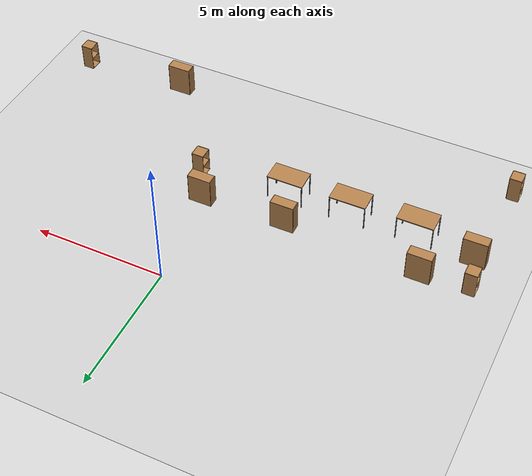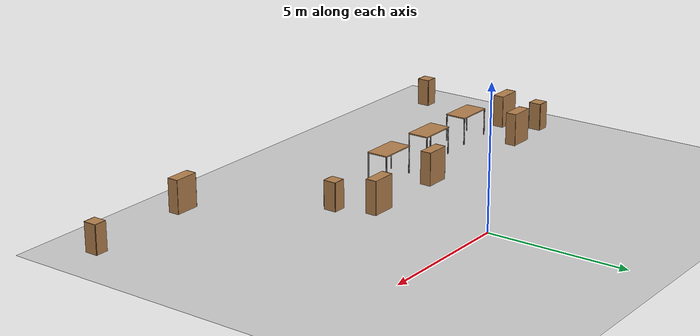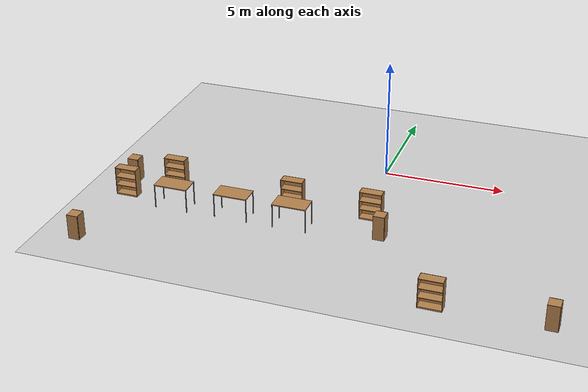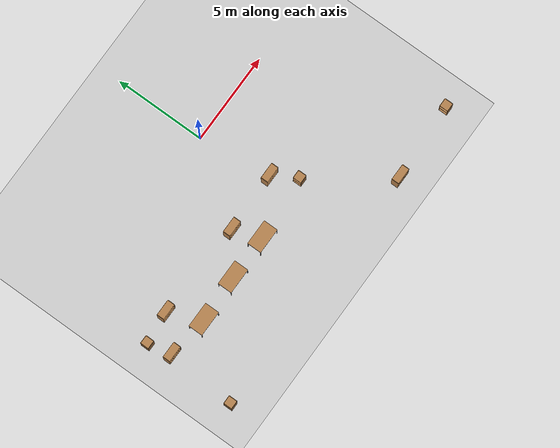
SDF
<sdf version="1.6">
 <world name="default">
  <model name="ground_plane">
   <static>1</static>
   <link name="link">
    <collision name="collision">
     <geometry><plane><normal>0 0 1</normal><size>100 100</size></plane></geometry>
     <surface><friction><ode><mu>100</mu><mu2>50</mu2></ode></friction></surface>
    </collision>
    <visual name="visual">
     <cast_shadows>0</cast_shadows>
     <geometry><plane><normal>0 0 1</normal><size>100 100</size></plane></geometry>
     <material>
      <script><uri>file://media/materials/scripts/gazebo.material</uri><name>Gazebo/Grey</name></script>
     </material>
    </visual>
   </link>
  </model>
  <model name="cabinet_clone">
   <static>1</static>
   <link name="cabinet_bottom_plate">
    <inertial>
     <pose>0 0 -1 0 -0 0</pose>
     <inertia><ixx>2.05</ixx><ixy>0</ixy><ixz>0</ixz><iyy>2.05</iyy><iyz>0</iyz><izz>2.05</izz></inertia>
     <mass>25</mass>
    </inertial>
    <collision name="cabinet_bottom_plate_geom">
     <pose>0 0 0.01 0 -0 0</pose>
     <geometry><box><size>0.45 0.45 0.02</size></box></geometry>
    </collision>
    <visual name="cabinet_bottom_plate_geom_visual">
     <pose>0 0 0.01 0 -0 0</pose>
     <geometry><box><size>0.45 0.45 0.02</size></box></geometry>
     <material>
      <script><uri>file://media/materials/scripts/gazebo.material</uri><name>Gazebo/Wood</name></script>
     </material>
    </visual>
    <collision name="cabinet_bottom_plate_geom_cabinet_back_plate">
     <pose>0.235 0 0.51 0 -0 0</pose>
     <geometry><box><size>0.02 0.45 1.02</size></box></geometry>
    </collision>
    <visual name="cabinet_bottom_plate_geom_cabinet_back_plate_visual">
     <pose>0.235 0 0.51 0 -0 0</pose>
     <geometry><box><size>0.02 0.45 1.02</size></box></geometry>
     <material>
      <script><uri>file://media/materials/scripts/gazebo.material</uri><name>Gazebo/Wood</name></script>
     </material>
    </visual>
    <collision name="cabinet_bottom_plate_geom_cabinet_left_plate">
     <pose>0 0.235 0.51 0 -0 0</pose>
     <geometry><box><size>0.45 0.02 1.02</size></box></geometry>
    </collision>
    <visual name="cabinet_bottom_plate_geom_cabinet_left_plate_visual">
     <pose>0 0.235 0.51 0 -0 0</pose>
     <geometry><box><size>0.45 0.02 1.02</size></box></geometry>
     <material>
      <script><uri>file://media/materials/scripts/gazebo.material</uri><name>Gazebo/Wood</name></script>
     </material>
    </visual>
    <collision name="cabinet_bottom_plate_geom_cabinet_middle_plate">
     <pose>0 0 0.51 0 -0 0</pose>
     <geometry><box><size>0.45 0.45 0.02</size></box></geometry>
    </collision>
    <visual name="cabinet_bottom_plate_geom_cabinet_middle_plate_visual">
     <pose>0 0 0.51 0 -0 0</pose>
     <geometry><box><size>0.45 0.45 0.02</size></box></geometry>
     <material>
      <script><uri>file://media/materials/scripts/gazebo.material</uri><name>Gazebo/Wood</name></script>
     </material>
    </visual>
    <collision name="cabinet_bottom_plate_geom_cabinet_right_plate">
     <pose>0 -0.235 0.51 0 -0 0</pose>
     <geometry><box><size>0.45 0.02 1.02</size></box></geometry>
    </collision>
    <visual name="cabinet_bottom_plate_geom_cabinet_right_plate_visual">
     <pose>0 -0.235 0.51 0 -0 0</pose>
     <geometry><box><size>0.45 0.02 1.02</size></box></geometry>
     <material>
      <script><uri>file://media/materials/scripts/gazebo.material</uri><name>Gazebo/Wood</name></script>
     </material>
    </visual>
    <collision name="cabinet_bottom_plate_geom_cabinet_top_plate">
     <pose>0 0 1.01 0 -0 0</pose>
     <geometry><box><size>0.45 0.45 0.02</size></box></geometry>
    </collision>
    <visual name="cabinet_bottom_plate_geom_cabinet_top_plate_visual">
     <pose>0 0 1.01 0 -0 0</pose>
     <geometry><box><size>0.45 0.45 0.02</size></box></geometry>
     <material>
      <script><uri>file://media/materials/scripts/gazebo.material</uri><name>Gazebo/Wood</name></script>
     </material>
    </visual>
   </link>
   <pose>-9.82401 -3.98425 0 0 -0 0</pose>
  </model>
  <model name="cabinet_clone_3">
   <static>1</static>
   <link name="cabinet_bottom_plate">
    <inertial>
     <pose>0 0 -1 0 -0 0</pose>
     <inertia><ixx>2.05</ixx><ixy>0</ixy><ixz>0</ixz><iyy>2.05</iyy><iyz>0</iyz><izz>2.05</izz></inertia>
     <mass>25</mass>
    </inertial>
    <collision name="cabinet_bottom_plate_geom">
     <pose>0 0 0.01 0 -0 0</pose>
     <geometry><box><size>0.45 0.45 0.02</size></box></geometry>
    </collision>
    <visual name="cabinet_bottom_plate_geom_visual">
     <pose>0 0 0.01 0 -0 0</pose>
     <geometry><box><size>0.45 0.45 0.02</size></box></geometry>
     <material>
      <script><uri>file://media/materials/scripts/gazebo.material</uri><name>Gazebo/Wood</name></script>
     </material>
    </visual>
    <collision name="cabinet_bottom_plate_geom_cabinet_back_plate">
     <pose>0.235 0 0.51 0 -0 0</pose>
     <geometry><box><size>0.02 0.45 1.02</size></box></geometry>
    </collision>
    <visual name="cabinet_bottom_plate_geom_cabinet_back_plate_visual">
     <pose>0.235 0 0.51 0 -0 0</pose>
     <geometry><box><size>0.02 0.45 1.02</size></box></geometry>
     <material>
      <script><uri>file://media/materials/scripts/gazebo.material</uri><name>Gazebo/Wood</name></script>
     </material>
    </visual>
    <collision name="cabinet_bottom_plate_geom_cabinet_left_plate">
     <pose>0 0.235 0.51 0 -0 0</pose>
     <geometry><box><size>0.45 0.02 1.02</size></box></geometry>
    </collision>
    <visual name="cabinet_bottom_plate_geom_cabinet_left_plate_visual">
     <pose>0 0.235 0.51 0 -0 0</pose>
     <geometry><box><size>0.45 0.02 1.02</size></box></geometry>
     <material>
      <script><uri>file://media/materials/scripts/gazebo.material</uri><name>Gazebo/Wood</name></script>
     </material>
    </visual>
    <collision name="cabinet_bottom_plate_geom_cabinet_middle_plate">
     <pose>0 0 0.51 0 -0 0</pose>
     <geometry><box><size>0.45 0.45 0.02</size></box></geometry>
    </collision>
    <visual name="cabinet_bottom_plate_geom_cabinet_middle_plate_visual">
     <pose>0 0 0.51 0 -0 0</pose>
     <geometry><box><size>0.45 0.45 0.02</size></box></geometry>
     <material>
      <script><uri>file://media/materials/scripts/gazebo.material</uri><name>Gazebo/Wood</name></script>
     </material>
    </visual>
    <collision name="cabinet_bottom_plate_geom_cabinet_right_plate">
     <pose>0 -0.235 0.51 0 -0 0</pose>
     <geometry><box><size>0.45 0.02 1.02</size></box></geometry>
    </collision>
    <visual name="cabinet_bottom_plate_geom_cabinet_right_plate_visual">
     <pose>0 -0.235 0.51 0 -0 0</pose>
     <geometry><box><size>0.45 0.02 1.02</size></box></geometry>
     <material>
      <script><uri>file://media/materials/scripts/gazebo.material</uri><name>Gazebo/Wood</name></script>
     </material>
    </visual>
    <collision name="cabinet_bottom_plate_geom_cabinet_top_plate">
     <pose>0 0 1.01 0 -0 0</pose>
     <geometry><box><size>0.45 0.45 0.02</size></box></geometry>
    </collision>
    <visual name="cabinet_bottom_plate_geom_cabinet_top_plate_visual">
     <pose>0 0 1.01 0 -0 0</pose>
     <geometry><box><size>0.45 0.45 0.02</size></box></geometry>
     <material>
      <script><uri>file://media/materials/scripts/gazebo.material</uri><name>Gazebo/Wood</name></script>
     </material>
    </visual>
   </link>
   <pose>1.20977 -5.22119 0 0 -0 0</pose>
  </model>
  <model name="cabinet_clone_4">
   <static>1</static>
   <link name="cabinet_bottom_plate">
    <inertial>
     <pose>0 0 -1 0 -0 0</pose>
     <inertia><ixx>2.05</ixx><ixy>0</ixy><ixz>0</ixz><iyy>2.05</iyy><iyz>0</iyz><izz>2.05</izz></inertia>
     <mass>25</mass>
    </inertial>
    <collision name="cabinet_bottom_plate_geom">
     <pose>0 0 0.01 0 -0 0</pose>
     <geometry><box><size>0.45 0.45 0.02</size></box></geometry>
    </collision>
    <visual name="cabinet_bottom_plate_geom_visual">
     <pose>0 0 0.01 0 -0 0</pose>
     <geometry><box><size>0.45 0.45 0.02</size></box></geometry>
     <material>
      <script><uri>file://media/materials/scripts/gazebo.material</uri><name>Gazebo/Wood</name></script>
     </material>
    </visual>
    <collision name="cabinet_bottom_plate_geom_cabinet_back_plate">
     <pose>0.235 0 0.51 0 -0 0</pose>
     <geometry><box><size>0.02 0.45 1.02</size></box></geometry>
    </collision>
    <visual name="cabinet_bottom_plate_geom_cabinet_back_plate_visual">
     <pose>0.235 0 0.51 0 -0 0</pose>
     <geometry><box><size>0.02 0.45 1.02</size></box></geometry>
     <material>
      <script><uri>file://media/materials/scripts/gazebo.material</uri><name>Gazebo/Wood</name></script>
     </material>
    </visual>
    <collision name="cabinet_bottom_plate_geom_cabinet_left_plate">
     <pose>0 0.235 0.51 0 -0 0</pose>
     <geometry><box><size>0.45 0.02 1.02</size></box></geometry>
    </collision>
    <visual name="cabinet_bottom_plate_geom_cabinet_left_plate_visual">
     <pose>0 0.235 0.51 0 -0 0</pose>
     <geometry><box><size>0.45 0.02 1.02</size></box></geometry>
     <material>
      <script><uri>file://media/materials/scripts/gazebo.material</uri><name>Gazebo/Wood</name></script>
     </material>
    </visual>
    <collision name="cabinet_bottom_plate_geom_cabinet_middle_plate">
     <pose>0 0 0.51 0 -0 0</pose>
     <geometry><box><size>0.45 0.45 0.02</size></box></geometry>
    </collision>
    <visual name="cabinet_bottom_plate_geom_cabinet_middle_plate_visual">
     <pose>0 0 0.51 0 -0 0</pose>
     <geometry><box><size>0.45 0.45 0.02</size></box></geometry>
     <material>
      <script><uri>file://media/materials/scripts/gazebo.material</uri><name>Gazebo/Wood</name></script>
     </material>
    </visual>
    <collision name="cabinet_bottom_plate_geom_cabinet_right_plate">
     <pose>0 -0.235 0.51 0 -0 0</pose>
     <geometry><box><size>0.45 0.02 1.02</size></box></geometry>
    </collision>
    <visual name="cabinet_bottom_plate_geom_cabinet_right_plate_visual">
     <pose>0 -0.235 0.51 0 -0 0</pose>
     <geometry><box><size>0.45 0.02 1.02</size></box></geometry>
     <material>
      <script><uri>file://media/materials/scripts/gazebo.material</uri><name>Gazebo/Wood</name></script>
     </material>
    </visual>
    <collision name="cabinet_bottom_plate_geom_cabinet_top_plate">
     <pose>0 0 1.01 0 -0 0</pose>
     <geometry><box><size>0.45 0.45 0.02</size></box></geometry>
    </collision>
    <visual name="cabinet_bottom_plate_geom_cabinet_top_plate_visual">
     <pose>0 0 1.01 0 -0 0</pose>
     <geometry><box><size>0.45 0.45 0.02</size></box></geometry>
     <material>
      <script><uri>file://media/materials/scripts/gazebo.material</uri><name>Gazebo/Wood</name></script>
     </material>
    </visual>
   </link>
   <pose>-9.82678 -9.02019 0 0 -0 0</pose>
  </model>
  <model name="cabinet_clone_5">
   <static>1</static>
   <link name="cabinet_bottom_plate">
    <inertial>
     <pose>0 0 -1 0 -0 0</pose>
     <inertia><ixx>2.05</ixx><ixy>0</ixy><ixz>0</ixz><iyy>2.05</iyy><iyz>0</iyz><izz>2.05</izz></inertia>
     <mass>25</mass>
    </inertial>
    <collision name="cabinet_bottom_plate_geom">
     <pose>0 0 0.01 0 -0 0</pose>
     <geometry><box><size>0.45 0.45 0.02</size></box></geometry>
    </collision>
    <visual name="cabinet_bottom_plate_geom_visual">
     <pose>0 0 0.01 0 -0 0</pose>
     <geometry><box><size>0.45 0.45 0.02</size></box></geometry>
     <material>
      <script><uri>file://media/materials/scripts/gazebo.material</uri><name>Gazebo/Wood</name></script>
     </material>
    </visual>
    <collision name="cabinet_bottom_plate_geom_cabinet_back_plate">
     <pose>0.235 0 0.51 0 -0 0</pose>
     <geometry><box><size>0.02 0.45 1.02</size></box></geometry>
    </collision>
    <visual name="cabinet_bottom_plate_geom_cabinet_back_plate_visual">
     <pose>0.235 0 0.51 0 -0 0</pose>
     <geometry><box><size>0.02 0.45 1.02</size></box></geometry>
     <material>
      <script><uri>file://media/materials/scripts/gazebo.material</uri><name>Gazebo/Wood</name></script>
     </material>
    </visual>
    <collision name="cabinet_bottom_plate_geom_cabinet_left_plate">
     <pose>0 0.235 0.51 0 -0 0</pose>
     <geometry><box><size>0.45 0.02 1.02</size></box></geometry>
    </collision>
    <visual name="cabinet_bottom_plate_geom_cabinet_left_plate_visual">
     <pose>0 0.235 0.51 0 -0 0</pose>
     <geometry><box><size>0.45 0.02 1.02</size></box></geometry>
     <material>
      <script><uri>file://media/materials/scripts/gazebo.material</uri><name>Gazebo/Wood</name></script>
     </material>
    </visual>
    <collision name="cabinet_bottom_plate_geom_cabinet_middle_plate">
     <pose>0 0 0.51 0 -0 0</pose>
     <geometry><box><size>0.45 0.45 0.02</size></box></geometry>
    </collision>
    <visual name="cabinet_bottom_plate_geom_cabinet_middle_plate_visual">
     <pose>0 0 0.51 0 -0 0</pose>
     <geometry><box><size>0.45 0.45 0.02</size></box></geometry>
     <material>
      <script><uri>file://media/materials/scripts/gazebo.material</uri><name>Gazebo/Wood</name></script>
     </material>
    </visual>
    <collision name="cabinet_bottom_plate_geom_cabinet_right_plate">
     <pose>0 -0.235 0.51 0 -0 0</pose>
     <geometry><box><size>0.45 0.02 1.02</size></box></geometry>
    </collision>
    <visual name="cabinet_bottom_plate_geom_cabinet_right_plate_visual">
     <pose>0 -0.235 0.51 0 -0 0</pose>
     <geometry><box><size>0.45 0.02 1.02</size></box></geometry>
     <material>
      <script><uri>file://media/materials/scripts/gazebo.material</uri><name>Gazebo/Wood</name></script>
     </material>
    </visual>
    <collision name="cabinet_bottom_plate_geom_cabinet_top_plate">
     <pose>0 0 1.01 0 -0 0</pose>
     <geometry><box><size>0.45 0.45 0.02</size></box></geometry>
    </collision>
    <visual name="cabinet_bottom_plate_geom_cabinet_top_plate_visual">
     <pose>0 0 1.01 0 -0 0</pose>
     <geometry><box><size>0.45 0.45 0.02</size></box></geometry>
     <material>
      <script><uri>file://media/materials/scripts/gazebo.material</uri><name>Gazebo/Wood</name></script>
     </material>
    </visual>
   </link>
   <pose>8.39269 -8.99171 0 0 -0 0</pose>
  </model>
  <model name="table_clone_0">
   <static>0</static>
   <link name="link">
    <collision name="surface">
     <pose>0 0 1 0 -0 0</pose>
     <geometry><box><size>1.5 0.8 0.03</size></box></geometry>
     <surface><friction><ode><mu>0.6</mu><mu2>0.6</mu2></ode></friction></surface>
    </collision>
    <visual name="visual1">
     <pose>0 0 1 0 -0 0</pose>
     <geometry><box><size>1.4 0.8 0.04</size></box></geometry>
     <material>
      <script><uri>file://media/materials/scripts/gazebo.material</uri><name>Gazebo/Wood</name></script>
     </material>
    </visual>
    <collision name="front_left_leg">
     <pose>0.68 0.38 0.5 0 -0 0</pose>
     <geometry><cylinder><radius>0.02</radius><length>1</length></cylinder></geometry>
    </collision>
    <visual name="front_left_leg">
     <pose>0.68 0.38 0.5 0 -0 0</pose>
     <geometry><cylinder><radius>0.02</radius><length>1</length></cylinder></geometry>
     <material>
      <script><uri>file://media/materials/scripts/gazebo.material</uri><name>Gazebo/Grey</name></script>
     </material>
    </visual>
    <collision name="front_right_leg">
     <pose>0.68 -0.38 0.5 0 -0 0</pose>
     <geometry><cylinder><radius>0.02</radius><length>1</length></cylinder></geometry>
    </collision>
    <visual name="front_right_leg">
     <pose>0.68 -0.38 0.5 0 -0 0</pose>
     <geometry><cylinder><radius>0.02</radius><length>1</length></cylinder></geometry>
     <material>
      <script><uri>file://media/materials/scripts/gazebo.material</uri><name>Gazebo/Grey</name></script>
     </material>
    </visual>
    <collision name="back_right_leg">
     <pose>-0.68 -0.38 0.5 0 -0 0</pose>
     <geometry><cylinder><radius>0.02</radius><length>1</length></cylinder></geometry>
    </collision>
    <visual name="back_right_leg">
     <pose>-0.68 -0.38 0.5 0 -0 0</pose>
     <geometry><cylinder><radius>0.02</radius><length>1</length></cylinder></geometry>
     <material>
      <script><uri>file://media/materials/scripts/gazebo.material</uri><name>Gazebo/Grey</name></script>
     </material>
    </visual>
    <collision name="back_left_leg">
     <pose>-0.68 0.38 0.5 0 -0 0</pose>
     <geometry><cylinder><radius>0.02</radius><length>1</length></cylinder></geometry>
    </collision>
    <visual name="back_left_leg">
     <pose>-0.68 0.38 0.5 0 -0 0</pose>
     <geometry><cylinder><radius>0.02</radius><length>1</length></cylinder></geometry>
     <material>
      <script><uri>file://media/materials/scripts/gazebo.material</uri><name>Gazebo/Grey</name></script>
     </material>
    </visual>
    <inertial>
     <inertia><ixx>1</ixx><ixy>0</ixy><ixz>0</ixz><iyy>1</iyy><iyz>0</iyz><izz>1</izz></inertia>
     <mass>1</mass>
    </inertial>
   </link>
   <pose>-7.28707 -5.56274 -1e-06 -2e-06 0 0</pose>
  </model>
  <model name="table_clone_1">
   <static>0</static>
   <link name="link">
    <collision name="surface">
     <pose>0 0 1 0 -0 0</pose>
     <geometry><box><size>1.5 0.8 0.03</size></box></geometry>
     <surface><friction><ode><mu>0.6</mu><mu2>0.6</mu2></ode></friction></surface>
    </collision>
    <visual name="visual1">
     <pose>0 0 1 0 -0 0</pose>
     <geometry><box><size>1.4 0.8 0.04</size></box></geometry>
     <material>
      <script><uri>file://media/materials/scripts/gazebo.material</uri><name>Gazebo/Wood</name></script>
     </material>
    </visual>
    <collision name="front_left_leg">
     <pose>0.68 0.38 0.5 0 -0 0</pose>
     <geometry><cylinder><radius>0.02</radius><length>1</length></cylinder></geometry>
    </collision>
    <visual name="front_left_leg">
     <pose>0.68 0.38 0.5 0 -0 0</pose>
     <geometry><cylinder><radius>0.02</radius><length>1</length></cylinder></geometry>
     <material>
      <script><uri>file://media/materials/scripts/gazebo.material</uri><name>Gazebo/Grey</name></script>
     </material>
    </visual>
    <collision name="front_right_leg">
     <pose>0.68 -0.38 0.5 0 -0 0</pose>
     <geometry><cylinder><radius>0.02</radius><length>1</length></cylinder></geometry>
    </collision>
    <visual name="front_right_leg">
     <pose>0.68 -0.38 0.5 0 -0 0</pose>
     <geometry><cylinder><radius>0.02</radius><length>1</length></cylinder></geometry>
     <material>
      <script><uri>file://media/materials/scripts/gazebo.material</uri><name>Gazebo/Grey</name></script>
     </material>
    </visual>
    <collision name="back_right_leg">
     <pose>-0.68 -0.38 0.5 0 -0 0</pose>
     <geometry><cylinder><radius>0.02</radius><length>1</length></cylinder></geometry>
    </collision>
    <visual name="back_right_leg">
     <pose>-0.68 -0.38 0.5 0 -0 0</pose>
     <geometry><cylinder><radius>0.02</radius><length>1</length></cylinder></geometry>
     <material>
      <script><uri>file://media/materials/scripts/gazebo.material</uri><name>Gazebo/Grey</name></script>
     </material>
    </visual>
    <collision name="back_left_leg">
     <pose>-0.68 0.38 0.5 0 -0 0</pose>
     <geometry><cylinder><radius>0.02</radius><length>1</length></cylinder></geometry>
    </collision>
    <visual name="back_left_leg">
     <pose>-0.68 0.38 0.5 0 -0 0</pose>
     <geometry><cylinder><radius>0.02</radius><length>1</length></cylinder></geometry>
     <material>
      <script><uri>file://media/materials/scripts/gazebo.material</uri><name>Gazebo/Grey</name></script>
     </material>
    </visual>
    <inertial>
     <inertia><ixx>1</ixx><ixy>0</ixy><ixz>0</ixz><iyy>1</iyy><iyz>0</iyz><izz>1</izz></inertia>
     <mass>1</mass>
    </inertial>
   </link>
   <pose>-4.7496 -5.48792 -1e-06 0 1e-06 0</pose>
  </model>
  <model name="table_clone_2">
   <static>0</static>
   <link name="link">
    <collision name="surface">
     <pose>0 0 1 0 -0 0</pose>
     <geometry><box><size>1.5 0.8 0.03</size></box></geometry>
     <surface><friction><ode><mu>0.6</mu><mu2>0.6</mu2></ode></friction></surface>
    </collision>
    <visual name="visual1">
     <pose>0 0 1 0 -0 0</pose>
     <geometry><box><size>1.4 0.8 0.04</size></box></geometry>
     <material>
      <script><uri>file://media/materials/scripts/gazebo.material</uri><name>Gazebo/Wood</name></script>
     </material>
    </visual>
    <collision name="front_left_leg">
     <pose>0.68 0.38 0.5 0 -0 0</pose>
     <geometry><cylinder><radius>0.02</radius><length>1</length></cylinder></geometry>
    </collision>
    <visual name="front_left_leg">
     <pose>0.68 0.38 0.5 0 -0 0</pose>
     <geometry><cylinder><radius>0.02</radius><length>1</length></cylinder></geometry>
     <material>
      <script><uri>file://media/materials/scripts/gazebo.material</uri><name>Gazebo/Grey</name></script>
     </material>
    </visual>
    <collision name="front_right_leg">
     <pose>0.68 -0.38 0.5 0 -0 0</pose>
     <geometry><cylinder><radius>0.02</radius><length>1</length></cylinder></geometry>
    </collision>
    <visual name="front_right_leg">
     <pose>0.68 -0.38 0.5 0 -0 0</pose>
     <geometry><cylinder><radius>0.02</radius><length>1</length></cylinder></geometry>
     <material>
      <script><uri>file://media/materials/scripts/gazebo.material</uri><name>Gazebo/Grey</name></script>
     </material>
    </visual>
    <collision name="back_right_leg">
     <pose>-0.68 -0.38 0.5 0 -0 0</pose>
     <geometry><cylinder><radius>0.02</radius><length>1</length></cylinder></geometry>
    </collision>
    <visual name="back_right_leg">
     <pose>-0.68 -0.38 0.5 0 -0 0</pose>
     <geometry><cylinder><radius>0.02</radius><length>1</length></cylinder></geometry>
     <material>
      <script><uri>file://media/materials/scripts/gazebo.material</uri><name>Gazebo/Grey</name></script>
     </material>
    </visual>
    <collision name="back_left_leg">
     <pose>-0.68 0.38 0.5 0 -0 0</pose>
     <geometry><cylinder><radius>0.02</radius><length>1</length></cylinder></geometry>
    </collision>
    <visual name="back_left_leg">
     <pose>-0.68 0.38 0.5 0 -0 0</pose>
     <geometry><cylinder><radius>0.02</radius><length>1</length></cylinder></geometry>
     <material>
      <script><uri>file://media/materials/scripts/gazebo.material</uri><name>Gazebo/Grey</name></script>
     </material>
    </visual>
    <inertial>
     <inertia><ixx>1</ixx><ixy>0</ixy><ixz>0</ixz><iyy>1</iyy><iyz>0</iyz><izz>1</izz></inertia>
     <mass>1</mass>
    </inertial>
   </link>
   <pose>-2.28914 -5.48905 -8e-06 1e-06 -0 0</pose>
  </model>
  <model name="bookshelf">
   <static>1</static>
   <link name="link">
    <inertial><mass>1</mass></inertial>
    <collision name="back">
     <pose>0 0.005 0.6 0 -0 0</pose>
     <geometry><box><size>0.9 0.01 1.2</size></box></geometry>
    </collision>
    <visual name="visual1">
     <pose>0 0.005 0.6 0 -0 0</pose>
     <geometry><box><size>0.9 0.01 1.2</size></box></geometry>
     <material>
      <script><uri>file://media/materials/scripts/gazebo.material</uri><name>Gazebo/Wood</name></script>
     </material>
    </visual>
    <collision name="left_side">
     <pose>0.45 -0.195 0.6 0 -0 0</pose>
     <geometry><box><size>0.02 0.4 1.2</size></box></geometry>
    </collision>
    <visual name="visual2">
     <pose>0.45 -0.195 0.6 0 -0 0</pose>
     <geometry><box><size>0.02 0.4 1.2</size></box></geometry>
     <material>
      <script><uri>file://media/materials/scripts/gazebo.material</uri><name>Gazebo/Wood</name></script>
     </material>
    </visual>
    <collision name="right_side">
     <pose>-0.45 -0.195 0.6 0 -0 0</pose>
     <geometry><box><size>0.02 0.4 1.2</size></box></geometry>
    </collision>
    <visual name="visual3">
     <pose>-0.45 -0.195 0.6 0 -0 0</pose>
     <geometry><box><size>0.02 0.4 1.2</size></box></geometry>
     <material>
      <script><uri>file://media/materials/scripts/gazebo.material</uri><name>Gazebo/Wood</name></script>
     </material>
    </visual>
    <collision name="bottom">
     <pose>0 -0.195 0.03 0 -0 0</pose>
     <geometry><box><size>0.88 0.4 0.06</size></box></geometry>
    </collision>
    <visual name="visual4">
     <pose>0 -0.195 0.03 0 -0 0</pose>
     <geometry><box><size>0.88 0.4 0.06</size></box></geometry>
     <material>
      <script><uri>file://media/materials/scripts/gazebo.material</uri><name>Gazebo/Wood</name></script>
     </material>
    </visual>
    <collision name="top">
     <pose>0 -0.195 1.19 0 -0 0</pose>
     <geometry><box><size>0.88 0.4 0.02</size></box></geometry>
    </collision>
    <visual name="visual5">
     <pose>0 -0.195 1.19 0 -0 0</pose>
     <geometry><box><size>0.88 0.4 0.02</size></box></geometry>
     <material>
      <script><uri>file://media/materials/scripts/gazebo.material</uri><name>Gazebo/Wood</name></script>
     </material>
    </visual>
    <collision name="low_shelf">
     <pose>0 -0.195 0.43 0 -0 0</pose>
     <geometry><box><size>0.88 0.4 0.02</size></box></geometry>
    </collision>
    <visual name="visual6">
     <pose>0 -0.195 0.43 0 -0 0</pose>
     <geometry><box><size>0.88 0.4 0.02</size></box></geometry>
     <material>
      <script><uri>file://media/materials/scripts/gazebo.material</uri><name>Gazebo/Wood</name></script>
     </material>
    </visual>
    <collision name="high_shelf">
     <pose>0 -0.195 0.8 0 -0 0</pose>
     <geometry><box><size>0.88 0.4 0.02</size></box></geometry>
    </collision>
    <visual name="visual7">
     <pose>0 -0.195 0.8 0 -0 0</pose>
     <geometry><box><size>0.88 0.4 0.02</size></box></geometry>
     <material>
      <script><uri>file://media/materials/scripts/gazebo.material</uri><name>Gazebo/Wood</name></script>
     </material>
    </visual>
   </link>
   <pose>-9.51703 -5.06167 0 0 -0 0</pose>
  </model>
  <model name="bookshelf_clone_3">
   <static>1</static>
   <link name="link">
    <inertial><mass>1</mass></inertial>
    <collision name="back">
     <pose>0 0.005 0.6 0 -0 0</pose>
     <geometry><box><size>0.9 0.01 1.2</size></box></geometry>
    </collision>
    <visual name="visual1">
     <pose>0 0.005 0.6 0 -0 0</pose>
     <geometry><box><size>0.9 0.01 1.2</size></box></geometry>
     <material>
      <script><uri>file://media/materials/scripts/gazebo.material</uri><name>Gazebo/Wood</name></script>
     </material>
    </visual>
    <collision name="left_side">
     <pose>0.45 -0.195 0.6 0 -0 0</pose>
     <geometry><box><size>0.02 0.4 1.2</size></box></geometry>
    </collision>
    <visual name="visual2">
     <pose>0.45 -0.195 0.6 0 -0 0</pose>
     <geometry><box><size>0.02 0.4 1.2</size></box></geometry>
     <material>
      <script><uri>file://media/materials/scripts/gazebo.material</uri><name>Gazebo/Wood</name></script>
     </material>
    </visual>
    <collision name="right_side">
     <pose>-0.45 -0.195 0.6 0 -0 0</pose>
     <geometry><box><size>0.02 0.4 1.2</size></box></geometry>
    </collision>
    <visual name="visual3">
     <pose>-0.45 -0.195 0.6 0 -0 0</pose>
     <geometry><box><size>0.02 0.4 1.2</size></box></geometry>
     <material>
      <script><uri>file://media/materials/scripts/gazebo.material</uri><name>Gazebo/Wood</name></script>
     </material>
    </visual>
    <collision name="bottom">
     <pose>0 -0.195 0.03 0 -0 0</pose>
     <geometry><box><size>0.88 0.4 0.06</size></box></geometry>
    </collision>
    <visual name="visual4">
     <pose>0 -0.195 0.03 0 -0 0</pose>
     <geometry><box><size>0.88 0.4 0.06</size></box></geometry>
     <material>
      <script><uri>file://media/materials/scripts/gazebo.material</uri><name>Gazebo/Wood</name></script>
     </material>
    </visual>
    <collision name="top">
     <pose>0 -0.195 1.19 0 -0 0</pose>
     <geometry><box><size>0.88 0.4 0.02</size></box></geometry>
    </collision>
    <visual name="visual5">
     <pose>0 -0.195 1.19 0 -0 0</pose>
     <geometry><box><size>0.88 0.4 0.02</size></box></geometry>
     <material>
      <script><uri>file://media/materials/scripts/gazebo.material</uri><name>Gazebo/Wood</name></script>
     </material>
    </visual>
    <collision name="low_shelf">
     <pose>0 -0.195 0.43 0 -0 0</pose>
     <geometry><box><size>0.88 0.4 0.02</size></box></geometry>
    </collision>
    <visual name="visual6">
     <pose>0 -0.195 0.43 0 -0 0</pose>
     <geometry><box><size>0.88 0.4 0.02</size></box></geometry>
     <material>
      <script><uri>file://media/materials/scripts/gazebo.material</uri><name>Gazebo/Wood</name></script>
     </material>
    </visual>
    <collision name="high_shelf">
     <pose>0 -0.195 0.8 0 -0 0</pose>
     <geometry><box><size>0.88 0.4 0.02</size></box></geometry>
    </collision>
    <visual name="visual7">
     <pose>0 -0.195 0.8 0 -0 0</pose>
     <geometry><box><size>0.88 0.4 0.02</size></box></geometry>
     <material>
      <script><uri>file://media/materials/scripts/gazebo.material</uri><name>Gazebo/Wood</name></script>
     </material>
    </visual>
   </link>
   <pose>-8.01636 -3.60183 0 0 -0 0</pose>
  </model>
  <model name="bookshelf_clone_4">
   <static>1</static>
   <link name="link">
    <inertial><mass>1</mass></inertial>
    <collision name="back">
     <pose>0 0.005 0.6 0 -0 0</pose>
     <geometry><box><size>0.9 0.01 1.2</size></box></geometry>
    </collision>
    <visual name="visual1">
     <pose>0 0.005 0.6 0 -0 0</pose>
     <geometry><box><size>0.9 0.01 1.2</size></box></geometry>
     <material>
      <script><uri>file://media/materials/scripts/gazebo.material</uri><name>Gazebo/Wood</name></script>
     </material>
    </visual>
    <collision name="left_side">
     <pose>0.45 -0.195 0.6 0 -0 0</pose>
     <geometry><box><size>0.02 0.4 1.2</size></box></geometry>
    </collision>
    <visual name="visual2">
     <pose>0.45 -0.195 0.6 0 -0 0</pose>
     <geometry><box><size>0.02 0.4 1.2</size></box></geometry>
     <material>
      <script><uri>file://media/materials/scripts/gazebo.material</uri><name>Gazebo/Wood</name></script>
     </material>
    </visual>
    <collision name="right_side">
     <pose>-0.45 -0.195 0.6 0 -0 0</pose>
     <geometry><box><size>0.02 0.4 1.2</size></box></geometry>
    </collision>
    <visual name="visual3">
     <pose>-0.45 -0.195 0.6 0 -0 0</pose>
     <geometry><box><size>0.02 0.4 1.2</size></box></geometry>
     <material>
      <script><uri>file://media/materials/scripts/gazebo.material</uri><name>Gazebo/Wood</name></script>
     </material>
    </visual>
    <collision name="bottom">
     <pose>0 -0.195 0.03 0 -0 0</pose>
     <geometry><box><size>0.88 0.4 0.06</size></box></geometry>
    </collision>
    <visual name="visual4">
     <pose>0 -0.195 0.03 0 -0 0</pose>
     <geometry><box><size>0.88 0.4 0.06</size></box></geometry>
     <material>
      <script><uri>file://media/materials/scripts/gazebo.material</uri><name>Gazebo/Wood</name></script>
     </material>
    </visual>
    <collision name="top">
     <pose>0 -0.195 1.19 0 -0 0</pose>
     <geometry><box><size>0.88 0.4 0.02</size></box></geometry>
    </collision>
    <visual name="visual5">
     <pose>0 -0.195 1.19 0 -0 0</pose>
     <geometry><box><size>0.88 0.4 0.02</size></box></geometry>
     <material>
      <script><uri>file://media/materials/scripts/gazebo.material</uri><name>Gazebo/Wood</name></script>
     </material>
    </visual>
    <collision name="low_shelf">
     <pose>0 -0.195 0.43 0 -0 0</pose>
     <geometry><box><size>0.88 0.4 0.02</size></box></geometry>
    </collision>
    <visual name="visual6">
     <pose>0 -0.195 0.43 0 -0 0</pose>
     <geometry><box><size>0.88 0.4 0.02</size></box></geometry>
     <material>
      <script><uri>file://media/materials/scripts/gazebo.material</uri><name>Gazebo/Wood</name></script>
     </material>
    </visual>
    <collision name="high_shelf">
     <pose>0 -0.195 0.8 0 -0 0</pose>
     <geometry><box><size>0.88 0.4 0.02</size></box></geometry>
    </collision>
    <visual name="visual7">
     <pose>0 -0.195 0.8 0 -0 0</pose>
     <geometry><box><size>0.88 0.4 0.02</size></box></geometry>
     <material>
      <script><uri>file://media/materials/scripts/gazebo.material</uri><name>Gazebo/Wood</name></script>
     </material>
    </visual>
   </link>
   <pose>0.479607 -3.72315 0 0 -0 0</pose>
  </model>
  <model name="bookshelf_clone_5">
   <static>1</static>
   <link name="link">
    <inertial><mass>1</mass></inertial>
    <collision name="back">
     <pose>0 0.005 0.6 0 -0 0</pose>
     <geometry><box><size>0.9 0.01 1.2</size></box></geometry>
    </collision>
    <visual name="visual1">
     <pose>0 0.005 0.6 0 -0 0</pose>
     <geometry><box><size>0.9 0.01 1.2</size></box></geometry>
     <material>
      <script><uri>file://media/materials/scripts/gazebo.material</uri><name>Gazebo/Wood</name></script>
     </material>
    </visual>
    <collision name="left_side">
     <pose>0.45 -0.195 0.6 0 -0 0</pose>
     <geometry><box><size>0.02 0.4 1.2</size></box></geometry>
    </collision>
    <visual name="visual2">
     <pose>0.45 -0.195 0.6 0 -0 0</pose>
     <geometry><box><size>0.02 0.4 1.2</size></box></geometry>
     <material>
      <script><uri>file://media/materials/scripts/gazebo.material</uri><name>Gazebo/Wood</name></script>
     </material>
    </visual>
    <collision name="right_side">
     <pose>-0.45 -0.195 0.6 0 -0 0</pose>
     <geometry><box><size>0.02 0.4 1.2</size></box></geometry>
    </collision>
    <visual name="visual3">
     <pose>-0.45 -0.195 0.6 0 -0 0</pose>
     <geometry><box><size>0.02 0.4 1.2</size></box></geometry>
     <material>
      <script><uri>file://media/materials/scripts/gazebo.material</uri><name>Gazebo/Wood</name></script>
     </material>
    </visual>
    <collision name="bottom">
     <pose>0 -0.195 0.03 0 -0 0</pose>
     <geometry><box><size>0.88 0.4 0.06</size></box></geometry>
    </collision>
    <visual name="visual4">
     <pose>0 -0.195 0.03 0 -0 0</pose>
     <geometry><box><size>0.88 0.4 0.06</size></box></geometry>
     <material>
      <script><uri>file://media/materials/scripts/gazebo.material</uri><name>Gazebo/Wood</name></script>
     </material>
    </visual>
    <collision name="top">
     <pose>0 -0.195 1.19 0 -0 0</pose>
     <geometry><box><size>0.88 0.4 0.02</size></box></geometry>
    </collision>
    <visual name="visual5">
     <pose>0 -0.195 1.19 0 -0 0</pose>
     <geometry><box><size>0.88 0.4 0.02</size></box></geometry>
     <material>
      <script><uri>file://media/materials/scripts/gazebo.material</uri><name>Gazebo/Wood</name></script>
     </material>
    </visual>
    <collision name="low_shelf">
     <pose>0 -0.195 0.43 0 -0 0</pose>
     <geometry><box><size>0.88 0.4 0.02</size></box></geometry>
    </collision>
    <visual name="visual6">
     <pose>0 -0.195 0.43 0 -0 0</pose>
     <geometry><box><size>0.88 0.4 0.02</size></box></geometry>
     <material>
      <script><uri>file://media/materials/scripts/gazebo.material</uri><name>Gazebo/Wood</name></script>
     </material>
    </visual>
    <collision name="high_shelf">
     <pose>0 -0.195 0.8 0 -0 0</pose>
     <geometry><box><size>0.88 0.4 0.02</size></box></geometry>
    </collision>
    <visual name="visual7">
     <pose>0 -0.195 0.8 0 -0 0</pose>
     <geometry><box><size>0.88 0.4 0.02</size></box></geometry>
     <material>
      <script><uri>file://media/materials/scripts/gazebo.material</uri><name>Gazebo/Wood</name></script>
     </material>
    </visual>
   </link>
   <pose>4.20284 -8.9908 0 0 -0 0</pose>
  </model>
  <model name="bookshelf_clone_6">
   <static>1</static>
   <link name="link">
    <inertial><mass>1</mass></inertial>
    <collision name="back">
     <pose>0 0.005 0.6 0 -0 0</pose>
     <geometry><box><size>0.9 0.01 1.2</size></box></geometry>
    </collision>
    <visual name="visual1">
     <pose>0 0.005 0.6 0 -0 0</pose>
     <geometry><box><size>0.9 0.01 1.2</size></box></geometry>
     <material>
      <script><uri>file://media/materials/scripts/gazebo.material</uri><name>Gazebo/Wood</name></script>
     </material>
    </visual>
    <collision name="left_side">
     <pose>0.45 -0.195 0.6 0 -0 0</pose>
     <geometry><box><size>0.02 0.4 1.2</size></box></geometry>
    </collision>
    <visual name="visual2">
     <pose>0.45 -0.195 0.6 0 -0 0</pose>
     <geometry><box><size>0.02 0.4 1.2</size></box></geometry>
     <material>
      <script><uri>file://media/materials/scripts/gazebo.material</uri><name>Gazebo/Wood</name></script>
     </material>
    </visual>
    <collision name="right_side">
     <pose>-0.45 -0.195 0.6 0 -0 0</pose>
     <geometry><box><size>0.02 0.4 1.2</size></box></geometry>
    </collision>
    <visual name="visual3">
     <pose>-0.45 -0.195 0.6 0 -0 0</pose>
     <geometry><box><size>0.02 0.4 1.2</size></box></geometry>
     <material>
      <script><uri>file://media/materials/scripts/gazebo.material</uri><name>Gazebo/Wood</name></script>
     </material>
    </visual>
    <collision name="bottom">
     <pose>0 -0.195 0.03 0 -0 0</pose>
     <geometry><box><size>0.88 0.4 0.06</size></box></geometry>
    </collision>
    <visual name="visual4">
     <pose>0 -0.195 0.03 0 -0 0</pose>
     <geometry><box><size>0.88 0.4 0.06</size></box></geometry>
     <material>
      <script><uri>file://media/materials/scripts/gazebo.material</uri><name>Gazebo/Wood</name></script>
     </material>
    </visual>
    <collision name="top">
     <pose>0 -0.195 1.19 0 -0 0</pose>
     <geometry><box><size>0.88 0.4 0.02</size></box></geometry>
    </collision>
    <visual name="visual5">
     <pose>0 -0.195 1.19 0 -0 0</pose>
     <geometry><box><size>0.88 0.4 0.02</size></box></geometry>
     <material>
      <script><uri>file://media/materials/scripts/gazebo.material</uri><name>Gazebo/Wood</name></script>
     </material>
    </visual>
    <collision name="low_shelf">
     <pose>0 -0.195 0.43 0 -0 0</pose>
     <geometry><box><size>0.88 0.4 0.02</size></box></geometry>
    </collision>
    <visual name="visual6">
     <pose>0 -0.195 0.43 0 -0 0</pose>
     <geometry><box><size>0.88 0.4 0.02</size></box></geometry>
     <material>
      <script><uri>file://media/materials/scripts/gazebo.material</uri><name>Gazebo/Wood</name></script>
     </material>
    </visual>
    <collision name="high_shelf">
     <pose>0 -0.195 0.8 0 -0 0</pose>
     <geometry><box><size>0.88 0.4 0.02</size></box></geometry>
    </collision>
    <visual name="visual7">
     <pose>0 -0.195 0.8 0 -0 0</pose>
     <geometry><box><size>0.88 0.4 0.02</size></box></geometry>
     <material>
      <script><uri>file://media/materials/scripts/gazebo.material</uri><name>Gazebo/Wood</name></script>
     </material>
    </visual>
   </link>
   <pose>-2.78767 -3.79778 0 0 -0 0</pose>
  </model>
 </world>
</sdf>
